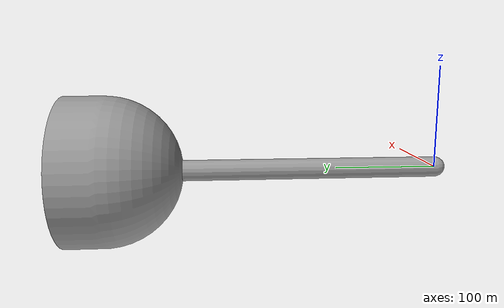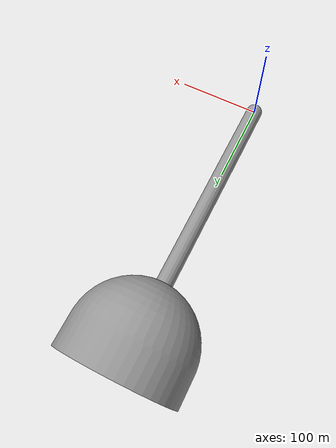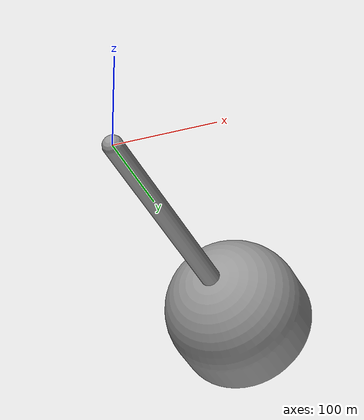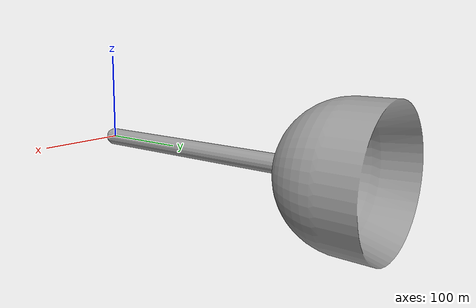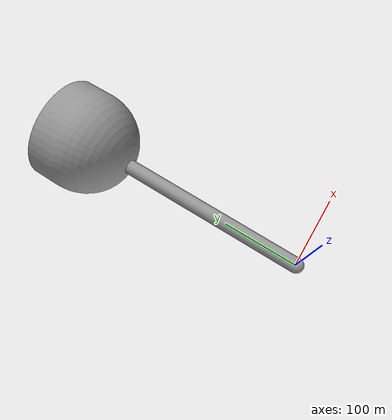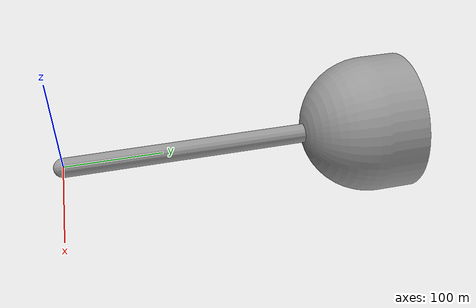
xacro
<?xml version="1.0"?>

<robot xmlns:xacro="http://www.ros.org/wiki/xacro" name="chain">
	<xacro:property name="link_length" value="0.025" />
	<xacro:property name="link_yz" value="0.001"/>
	<xacro:property name="link_num" value="20"/>
	<xacro:property name="chain_link_mass" value="0.0001"/>

	<xacro:macro name="chain_link" params="name X Y Z mass">
		<link name="${name}">
			<visual>
				<origin xyz="${X/2} 0 0" rpy="0 0 0" />
				<geometry name="link_geom">
					<box size="${X} ${Y} ${Z}" />
				</geometry>
			</visual>
			<collision>
				<origin xyz="${X/2} 0 0" rpy="0 0 0" />
				<geometry>
					<box size="${X} ${Y} ${Z}" />
				</geometry>
			</collision>
			<inertial>
				<origin xyz="${X/2} 0 0" rpy="0 0 0" />
				<mass value="${mass}"/>
				<inertia ixx="${mass*(Y*Y + Z*Z)/12}" ixy="0.00" ixz="0.00" iyy="${mass*(X*X + Z*Z)/12}" iyz="0.00" izz="${mass*(X*X + Y*Y)/12}"/>
			</inertial>
		</link>
	</xacro:macro>

	<xacro:macro name="link_ball_joint" params="name X parent">
		<joint name="${name}_x" type="continuous">
			<origin xyz="${X} 0 0" rpy="0 0 0"/>
			<parent link="${parent}"/>
			<child link="${name}_phi"/>
			<axis xyz="1 0 0" />
		</joint>

		<link name="${name}_phi">
			<inertial>
			<mass value="0.0001" />
			<inertia ixx="5.8083e-5" ixy="0" ixz="0" iyy="3.0833e-6" iyz="0" izz="5.9083e-5" />
			</inertial>
		</link>

		<joint name="${name}_y" type="continuous">
			<parent link="${name}_phi"/>
			<child link="${name}_psi"/>
			<axis xyz="0 1 0" />
		</joint>

		<link name="${name}_psi">
			<inertial>
			<mass value="0.0001" />
			<inertia ixx="5.8083e-5" ixy="0" ixz="0" iyy="3.0833e-6" iyz="0" izz="5.9083e-5" />
			</inertial>
		</link>

		<joint name="${name}_z" type="continuous">
			<parent link="${name}_psi"/>
			<child link="${name}"/>
			<axis xyz="0 0 1" />
		</joint>

	</xacro:macro>

	<material name="Grey">
		<color rgba="0.7 0.7 0.7 1.0"/>
	</material>

	<xacro:macro name="link_gazebo" params="name">
	  <gazebo reference="${name}">
		  <selfCollide>false</selfCollide>
		  <material>Grey</material>
	  </gazebo>
	  <gazebo reference="${name}_link_joint">
		  <implicitSpringDamper>true</implicitSpringDamper>
	  </gazebo>
	</xacro:macro>

	<xacro:macro name="chain_loop" params="i">
		<xacro:chain_link name="${link_num - i + 1}" X="${link_length}" Y="${link_yz}" Z="${link_yz}" mass="${chain_link_mass}"/>
		<xacro:link_ball_joint name="${link_num - i + 1}" X="${link_length}" parent="${link_num - i}"/>
		<xacro:link_gazebo name="${link_num - i + 1}"/>

		<xacro:if value="${i-1}">
			<xacro:chain_loop i="${i-1}" />
		</xacro:if>
	</xacro:macro>

	<xacro:macro name="ball" params="d mass">
		<link name='ball'>
			<inertial>
				<origin xyz="${d} 0 0 " />
				<mass value="${mass}"/>
				<inertia ixx="${mass* (d/2)**2 * (2/5)}" ixy="0.00" ixz="0.00" iyy="${mass* (d/2)**2 * (2/5)}" iyz="0.00" izz="${mass* (d/2)**2 * (2/5)}"/>
			</inertial>

			<collision name='collision'>
				<origin xyz="${d} 0 0 "/>
				<geometry>
					<sphere radius="${d}"/>
				</geometry>
				<max_contacts>10</max_contacts>
				<surface>
					<contact>
						<ode/>
					</contact>
					<bounce/>
					<friction>
						<torsional>
							<ode/>
						</torsional>
						<ode/>
					</friction>
				</surface>
			</collision>

			<visual name='visual'>
				<origin xyz="${d} 0 0 " />
				<geometry>
					<sphere radius="${d}"/>
				</geometry>
			</visual>

			<self_collide>0</self_collide>
			<enable_wind>0</enable_wind>
			<kinematic>0</kinematic>
	  	</link>
	</xacro:macro>

	<xacro:macro name="cup" params="mass">
		<link name="cup">
			<inertial>
				<origin xyz="$0 0 0" />
				<mass value="${mass}"/>
				<inertia ixx="${mass * 0.282601}" ixy="${mass * 0.0056}" ixz="${mass * -0.000002}" iyy="${mass * 0.147524}" iyz="${mass * -0.007428}" izz="${mass * 0.276385}"/>
			</inertial>

			<collision name='collision'>
				<origin xyz="0 0 0"/>
				<geometry>
					<mesh filename="file://../meshes/cup.dae"/>
				</geometry>
				<max_contacts>10</max_contacts>
				<surface>
					<contact>
						<ode/>
					</contact>
					<bounce/>
					<friction>
						<torsional>
							<ode/>
						</torsional>
						<ode/>
					</friction>
				</surface>
			</collision>

			<visual name='visual'>
				<origin xyz="0 0 0" />
				<geometry>
					<mesh filename="file://../meshes/cup.dae"/>
				</geometry>
			</visual>

			<self_collide>0</self_collide>
			<enable_wind>0</enable_wind>
			<kinematic>0</kinematic>
	  	</link>
	</xacro:macro>

	<!-- build chain links with base at the bottom usign the loop. build ball, attach to chain -->
	<link name="chain_base"/>

	<xacro:chain_link name="0" X="${link_length}" Y="${link_yz}" Z="${link_yz}" mass="0.001"/>
		<joint name="0" type="fixed">
			<origin xyz="0 0 0" rpy="0 0 0" />
			<parent link="chain_base"/>
			<child link="0"/>
		</joint>
	<xacro:link_gazebo name="0" />

	<xacro:chain_loop i="${link_num}" />

	<xacro:cup mass="1"/>
	<xacro:link_gazebo name="cup"/>
	<xacro:link_ball_joint name="cup" X="${link_length}" parent="${link_num}"/>

</robot>
